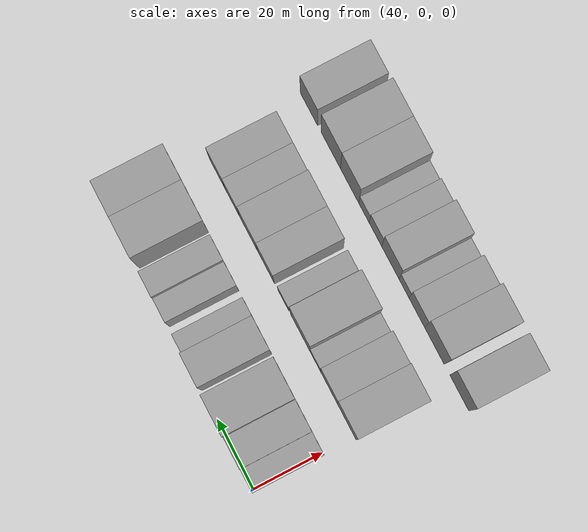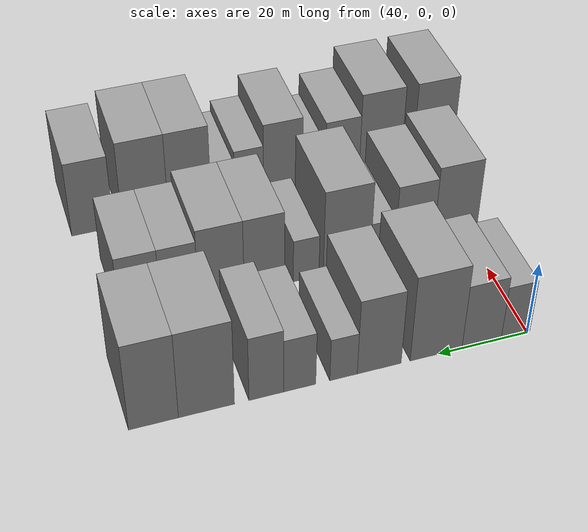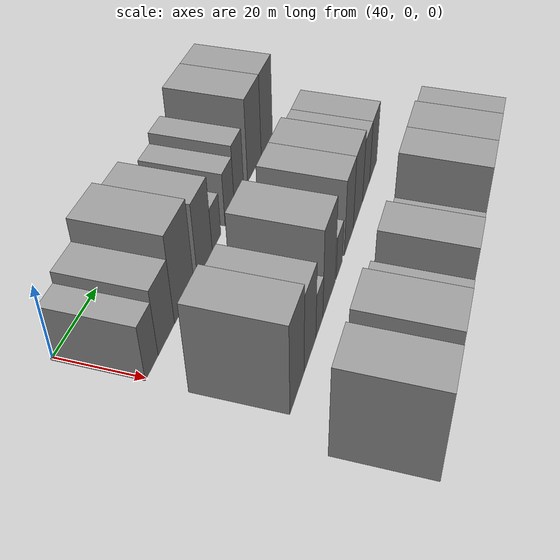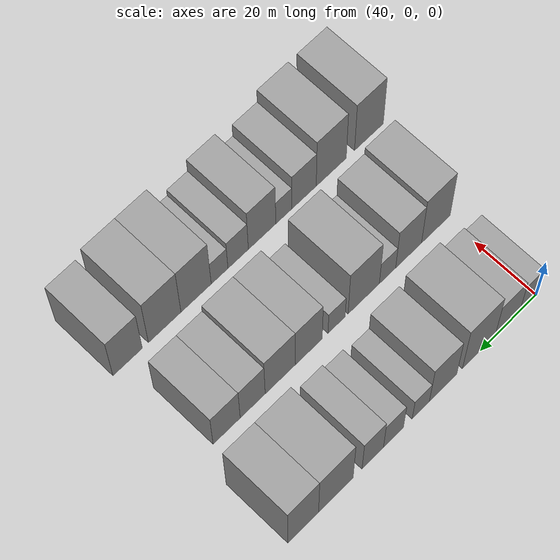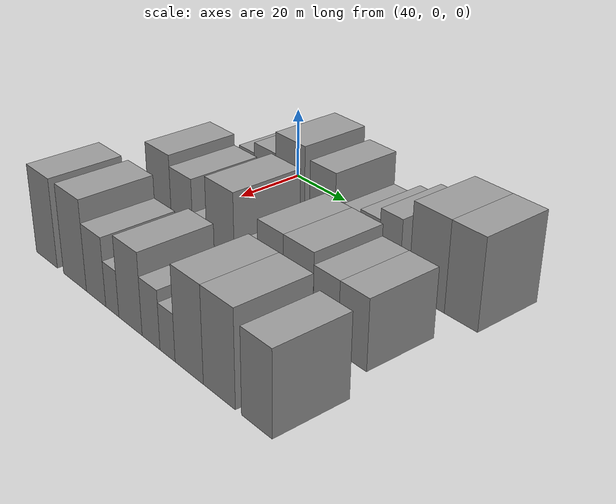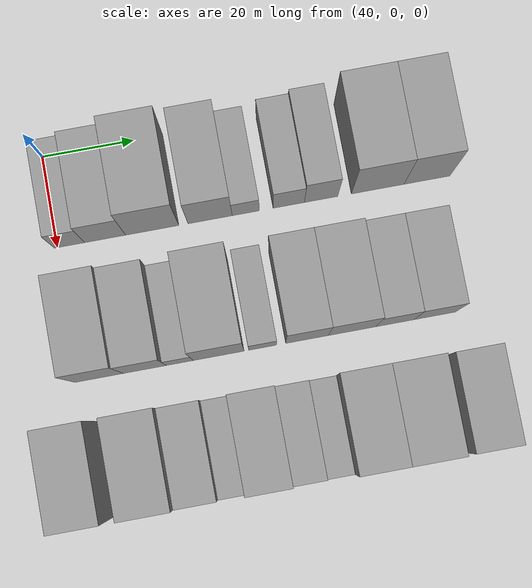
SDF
<sdf version="1.6">
 <world name="default">
  <model name="building_40">
   <static>1</static>
   <pose>50.0000 2.6433 0 0.000000 0.000000 0.000000</pose>
   <link name="link">
    <pose>0 0 7.50 0 0 0</pose>
    <collision name="collision"><geometry><box><size>20.0000 6.5380 15.0000</size></box></geometry></collision>
    <visual name="visual">
     <cast_shadows>0</cast_shadows>
     <geometry><box><size>20.0000 6.5380 15.0000</size></box></geometry>
     <material>
      <script>
       <uri>model://grey_wall/materials/scripts</uri>
       <uri>model://grey_wall/materials/textures</uri>
       <name>vrc/grey_wall</name>
      </script>
     </material>
    </visual>
   </link>
  </model>
  <model name="building_41">
   <static>1</static>
   <pose>50.0000 10.3555 0 0.000000 0.000000 0.000000</pose>
   <link name="link">
    <pose>0 0 9.00 0 0 0</pose>
    <collision name="collision"><geometry><box><size>20.0000 8.8864 18.0000</size></box></geometry></collision>
    <visual name="visual">
     <cast_shadows>0</cast_shadows>
     <geometry><box><size>20.0000 8.8864 18.0000</size></box></geometry>
     <material>
      <script>
       <uri>model://grey_wall/materials/scripts</uri>
       <uri>model://grey_wall/materials/textures</uri>
       <name>vrc/grey_wall</name>
      </script>
     </material>
    </visual>
   </link>
  </model>
  <model name="building_42">
   <static>1</static>
   <pose>50.0000 20.5644 0 0.000000 0.000000 0.000000</pose>
   <link name="link">
    <pose>0 0 12.00 0 0 0</pose>
    <collision name="collision"><geometry><box><size>20.0000 11.5315 24.0000</size></box></geometry></collision>
    <visual name="visual">
     <cast_shadows>0</cast_shadows>
     <geometry><box><size>20.0000 11.5315 24.0000</size></box></geometry>
     <material>
      <script>
       <uri>model://grey_wall/materials/scripts</uri>
       <uri>model://grey_wall/materials/textures</uri>
       <name>vrc/grey_wall</name>
      </script>
     </material>
    </visual>
   </link>
  </model>
  <model name="building_43">
   <static>1</static>
   <pose>50.0000 33.1167 0 0.000000 0.000000 0.000000</pose>
   <link name="link">
    <pose>0 0 10.50 0 0 0</pose>
    <collision name="collision"><geometry><box><size>20.0000 9.5731 21.0000</size></box></geometry></collision>
    <visual name="visual">
     <cast_shadows>0</cast_shadows>
     <geometry><box><size>20.0000 9.5731 21.0000</size></box></geometry>
     <material>
      <script>
       <uri>model://grey_wall/materials/scripts</uri>
       <uri>model://grey_wall/materials/textures</uri>
       <name>vrc/grey_wall</name>
      </script>
     </material>
    </visual>
   </link>
  </model>
  <model name="building_44">
   <static>1</static>
   <pose>50.0000 40.8518 0 0.000000 0.000000 0.000000</pose>
   <link name="link">
    <pose>0 0 6.00 0 0 0</pose>
    <collision name="collision"><geometry><box><size>20.0000 5.8971 12.0000</size></box></geometry></collision>
    <visual name="visual">
     <cast_shadows>0</cast_shadows>
     <geometry><box><size>20.0000 5.8971 12.0000</size></box></geometry>
     <material>
      <script>
       <uri>model://grey_wall/materials/scripts</uri>
       <uri>model://grey_wall/materials/textures</uri>
       <name>vrc/grey_wall</name>
      </script>
     </material>
    </visual>
   </link>
  </model>
  <model name="building_45">
   <static>1</static>
   <pose>50.0000 50.2106 0 0.000000 0.000000 0.000000</pose>
   <link name="link">
    <pose>0 0 7.50 0 0 0</pose>
    <collision name="collision"><geometry><box><size>20.0000 6.8205 15.0000</size></box></geometry></collision>
    <visual name="visual">
     <cast_shadows>0</cast_shadows>
     <geometry><box><size>20.0000 6.8205 15.0000</size></box></geometry>
     <material>
      <script>
       <uri>model://grey_wall/materials/scripts</uri>
       <uri>model://grey_wall/materials/textures</uri>
       <name>vrc/grey_wall</name>
      </script>
     </material>
    </visual>
   </link>
  </model>
  <model name="building_46">
   <static>1</static>
   <pose>50.0000 57.2424 0 0.000000 0.000000 0.000000</pose>
   <link name="link">
    <pose>0 0 9.00 0 0 0</pose>
    <collision name="collision"><geometry><box><size>20.0000 7.2431 18.0000</size></box></geometry></collision>
    <visual name="visual">
     <cast_shadows>0</cast_shadows>
     <geometry><box><size>20.0000 7.2431 18.0000</size></box></geometry>
     <material>
      <script>
       <uri>model://grey_wall/materials/scripts</uri>
       <uri>model://grey_wall/materials/textures</uri>
       <name>vrc/grey_wall</name>
      </script>
     </material>
    </visual>
   </link>
  </model>
  <model name="building_47">
   <static>1</static>
   <pose>50.0000 69.6087 0 0.000000 0.000000 0.000000</pose>
   <link name="link">
    <pose>0 0 12.00 0 0 0</pose>
    <collision name="collision"><geometry><box><size>20.0000 11.4896 24.0000</size></box></geometry></collision>
    <visual name="visual">
     <cast_shadows>0</cast_shadows>
     <geometry><box><size>20.0000 11.4896 24.0000</size></box></geometry>
     <material>
      <script>
       <uri>model://grey_wall/materials/scripts</uri>
       <uri>model://grey_wall/materials/textures</uri>
       <name>vrc/grey_wall</name>
      </script>
     </material>
    </visual>
   </link>
  </model>
  <model name="building_48">
   <static>1</static>
   <pose>50.0000 80.3825 0 0.000000 0.000000 0.000000</pose>
   <link name="link">
    <pose>0 0 12.00 0 0 0</pose>
    <collision name="collision"><geometry><box><size>20.0000 10.0580 24.0000</size></box></geometry></collision>
    <visual name="visual">
     <cast_shadows>0</cast_shadows>
     <geometry><box><size>20.0000 10.0580 24.0000</size></box></geometry>
     <material>
      <script>
       <uri>model://grey_wall/materials/scripts</uri>
       <uri>model://grey_wall/materials/textures</uri>
       <name>vrc/grey_wall</name>
      </script>
     </material>
    </visual>
   </link>
  </model>
  <model name="building_113">
   <static>1</static>
   <pose>79.0000 4.1818 0 0.000000 0.000000 0.000000</pose>
   <link name="link">
    <pose>0 0 12.00 0 0 0</pose>
    <collision name="collision"><geometry><box><size>20.0000 10.3268 24.0000</size></box></geometry></collision>
    <visual name="visual">
     <cast_shadows>0</cast_shadows>
     <geometry><box><size>20.0000 10.3268 24.0000</size></box></geometry>
     <material>
      <script>
       <uri>model://grey_wall/materials/scripts</uri>
       <uri>model://grey_wall/materials/textures</uri>
       <name>vrc/grey_wall</name>
      </script>
     </material>
    </visual>
   </link>
  </model>
  <model name="building_114">
   <static>1</static>
   <pose>79.0000 13.9380 0 0.000000 0.000000 0.000000</pose>
   <link name="link">
    <pose>0 0 10.50 0 0 0</pose>
    <collision name="collision"><geometry><box><size>20.0000 9.1856 21.0000</size></box></geometry></collision>
    <visual name="visual">
     <cast_shadows>0</cast_shadows>
     <geometry><box><size>20.0000 9.1856 21.0000</size></box></geometry>
     <material>
      <script>
       <uri>model://grey_wall/materials/scripts</uri>
       <uri>model://grey_wall/materials/textures</uri>
       <name>vrc/grey_wall</name>
      </script>
     </material>
    </visual>
   </link>
  </model>
  <model name="building_115">
   <static>1</static>
   <pose>79.0000 21.4108 0 0.000000 0.000000 0.000000</pose>
   <link name="link">
    <pose>0 0 6.00 0 0 0</pose>
    <collision name="collision"><geometry><box><size>20.0000 5.7599 12.0000</size></box></geometry></collision>
    <visual name="visual">
     <cast_shadows>0</cast_shadows>
     <geometry><box><size>20.0000 5.7599 12.0000</size></box></geometry>
     <material>
      <script>
       <uri>model://grey_wall/materials/scripts</uri>
       <uri>model://grey_wall/materials/textures</uri>
       <name>vrc/grey_wall</name>
      </script>
     </material>
    </visual>
   </link>
  </model>
  <model name="building_116">
   <static>1</static>
   <pose>79.0000 29.7503 0 0.000000 0.000000 0.000000</pose>
   <link name="link">
    <pose>0 0 12.00 0 0 0</pose>
    <collision name="collision"><geometry><box><size>20.0000 10.9190 24.0000</size></box></geometry></collision>
    <visual name="visual">
     <cast_shadows>0</cast_shadows>
     <geometry><box><size>20.0000 10.9190 24.0000</size></box></geometry>
     <material>
      <script>
       <uri>model://grey_wall/materials/scripts</uri>
       <uri>model://grey_wall/materials/textures</uri>
       <name>vrc/grey_wall</name>
      </script>
     </material>
    </visual>
   </link>
  </model>
  <model name="building_117">
   <static>1</static>
   <pose>79.0000 39.1713 0 0.000000 0.000000 0.000000</pose>
   <link name="link">
    <pose>0 0 6.00 0 0 0</pose>
    <collision name="collision"><geometry><box><size>20.0000 5.9230 12.0000</size></box></geometry></collision>
    <visual name="visual">
     <cast_shadows>0</cast_shadows>
     <geometry><box><size>20.0000 5.9230 12.0000</size></box></geometry>
     <material>
      <script>
       <uri>model://grey_wall/materials/scripts</uri>
       <uri>model://grey_wall/materials/textures</uri>
       <name>vrc/grey_wall</name>
      </script>
     </material>
    </visual>
   </link>
  </model>
  <model name="building_118">
   <static>1</static>
   <pose>79.0000 48.6956 0 0.000000 0.000000 0.000000</pose>
   <link name="link">
    <pose>0 0 10.50 0 0 0</pose>
    <collision name="collision"><geometry><box><size>20.0000 9.1257 21.0000</size></box></geometry></collision>
    <visual name="visual">
     <cast_shadows>0</cast_shadows>
     <geometry><box><size>20.0000 9.1257 21.0000</size></box></geometry>
     <material>
      <script>
       <uri>model://grey_wall/materials/scripts</uri>
       <uri>model://grey_wall/materials/textures</uri>
       <name>vrc/grey_wall</name>
      </script>
     </material>
    </visual>
   </link>
  </model>
  <model name="building_119">
   <static>1</static>
   <pose>79.0000 58.3672 0 0.000000 0.000000 0.000000</pose>
   <link name="link">
    <pose>0 0 10.50 0 0 0</pose>
    <collision name="collision"><geometry><box><size>20.0000 10.2175 21.0000</size></box></geometry></collision>
    <visual name="visual">
     <cast_shadows>0</cast_shadows>
     <geometry><box><size>20.0000 10.2175 21.0000</size></box></geometry>
     <material>
      <script>
       <uri>model://grey_wall/materials/scripts</uri>
       <uri>model://grey_wall/materials/textures</uri>
       <name>vrc/grey_wall</name>
      </script>
     </material>
    </visual>
   </link>
  </model>
  <model name="building_120">
   <static>1</static>
   <pose>79.0000 67.6399 0 0.000000 0.000000 0.000000</pose>
   <link name="link">
    <pose>0 0 9.00 0 0 0</pose>
    <collision name="collision"><geometry><box><size>20.0000 8.3278 18.0000</size></box></geometry></collision>
    <visual name="visual">
     <cast_shadows>0</cast_shadows>
     <geometry><box><size>20.0000 8.3278 18.0000</size></box></geometry>
     <material>
      <script>
       <uri>model://grey_wall/materials/scripts</uri>
       <uri>model://grey_wall/materials/textures</uri>
       <name>vrc/grey_wall</name>
      </script>
     </material>
    </visual>
   </link>
  </model>
  <model name="building_121">
   <static>1</static>
   <pose>79.0000 76.2771 0 0.000000 0.000000 0.000000</pose>
   <link name="link">
    <pose>0 0 9.00 0 0 0</pose>
    <collision name="collision"><geometry><box><size>20.0000 8.9467 18.0000</size></box></geometry></collision>
    <visual name="visual">
     <cast_shadows>0</cast_shadows>
     <geometry><box><size>20.0000 8.9467 18.0000</size></box></geometry>
     <material>
      <script>
       <uri>model://grey_wall/materials/scripts</uri>
       <uri>model://grey_wall/materials/textures</uri>
       <name>vrc/grey_wall</name>
      </script>
     </material>
    </visual>
   </link>
  </model>
  <model name="building_187">
   <static>1</static>
   <pose>108.0000 -2.6671 0 0.000000 0.000000 0.000000</pose>
   <link name="link">
    <pose>0 0 12.00 0 0 0</pose>
    <collision name="collision"><geometry><box><size>20.0000 10.3879 24.0000</size></box></geometry></collision>
    <visual name="visual">
     <cast_shadows>0</cast_shadows>
     <geometry><box><size>20.0000 10.3879 24.0000</size></box></geometry>
     <material>
      <script>
       <uri>model://grey_wall/materials/scripts</uri>
       <uri>model://grey_wall/materials/textures</uri>
       <name>vrc/grey_wall</name>
      </script>
     </material>
    </visual>
   </link>
  </model>
  <model name="building_188">
   <static>1</static>
   <pose>108.0000 10.8776 0 0.000000 0.000000 0.000000</pose>
   <link name="link">
    <pose>0 0 12.00 0 0 0</pose>
    <collision name="collision"><geometry><box><size>20.0000 10.7017 24.0000</size></box></geometry></collision>
    <visual name="visual">
     <cast_shadows>0</cast_shadows>
     <geometry><box><size>20.0000 10.7017 24.0000</size></box></geometry>
     <material>
      <script>
       <uri>model://grey_wall/materials/scripts</uri>
       <uri>model://grey_wall/materials/textures</uri>
       <name>vrc/grey_wall</name>
      </script>
     </material>
    </visual>
   </link>
  </model>
  <model name="building_189">
   <static>1</static>
   <pose>108.0000 20.5177 0 0.000000 0.000000 0.000000</pose>
   <link name="link">
    <pose>0 0 9.00 0 0 0</pose>
    <collision name="collision"><geometry><box><size>20.0000 8.5784 18.0000</size></box></geometry></collision>
    <visual name="visual">
     <cast_shadows>0</cast_shadows>
     <geometry><box><size>20.0000 8.5784 18.0000</size></box></geometry>
     <material>
      <script>
       <uri>model://grey_wall/materials/scripts</uri>
       <uri>model://grey_wall/materials/textures</uri>
       <name>vrc/grey_wall</name>
      </script>
     </material>
    </visual>
   </link>
  </model>
  <model name="building_190">
   <static>1</static>
   <pose>108.0000 27.6079 0 0.000000 0.000000 0.000000</pose>
   <link name="link">
    <pose>0 0 6.00 0 0 0</pose>
    <collision name="collision"><geometry><box><size>20.0000 5.6020 12.0000</size></box></geometry></collision>
    <visual name="visual">
     <cast_shadows>0</cast_shadows>
     <geometry><box><size>20.0000 5.6020 12.0000</size></box></geometry>
     <material>
      <script>
       <uri>model://grey_wall/materials/scripts</uri>
       <uri>model://grey_wall/materials/textures</uri>
       <name>vrc/grey_wall</name>
      </script>
     </material>
    </visual>
   </link>
  </model>
  <model name="building_191">
   <static>1</static>
   <pose>108.0000 35.1786 0 0.000000 0.000000 0.000000</pose>
   <link name="link">
    <pose>0 0 10.50 0 0 0</pose>
    <collision name="collision"><geometry><box><size>20.0000 9.5395 21.0000</size></box></geometry></collision>
    <visual name="visual">
     <cast_shadows>0</cast_shadows>
     <geometry><box><size>20.0000 9.5395 21.0000</size></box></geometry>
     <material>
      <script>
       <uri>model://grey_wall/materials/scripts</uri>
       <uri>model://grey_wall/materials/textures</uri>
       <name>vrc/grey_wall</name>
      </script>
     </material>
    </visual>
   </link>
  </model>
  <model name="building_192">
   <static>1</static>
   <pose>108.0000 43.4532 0 0.000000 0.000000 0.000000</pose>
   <link name="link">
    <pose>0 0 7.50 0 0 0</pose>
    <collision name="collision"><geometry><box><size>20.0000 7.0097 15.0000</size></box></geometry></collision>
    <visual name="visual">
     <cast_shadows>0</cast_shadows>
     <geometry><box><size>20.0000 7.0097 15.0000</size></box></geometry>
     <material>
      <script>
       <uri>model://grey_wall/materials/scripts</uri>
       <uri>model://grey_wall/materials/textures</uri>
       <name>vrc/grey_wall</name>
      </script>
     </material>
    </visual>
   </link>
  </model>
  <model name="building_193">
   <static>1</static>
   <pose>108.0000 49.8069 0 0.000000 0.000000 0.000000</pose>
   <link name="link">
    <pose>0 0 6.00 0 0 0</pose>
    <collision name="collision"><geometry><box><size>20.0000 5.6976 12.0000</size></box></geometry></collision>
    <visual name="visual">
     <cast_shadows>0</cast_shadows>
     <geometry><box><size>20.0000 5.6976 12.0000</size></box></geometry>
     <material>
      <script>
       <uri>model://grey_wall/materials/scripts</uri>
       <uri>model://grey_wall/materials/textures</uri>
       <name>vrc/grey_wall</name>
      </script>
     </material>
    </visual>
   </link>
  </model>
  <model name="building_194">
   <static>1</static>
   <pose>108.0000 57.7580 0 0.000000 0.000000 0.000000</pose>
   <link name="link">
    <pose>0 0 12.00 0 0 0</pose>
    <collision name="collision"><geometry><box><size>20.0000 10.2046 24.0000</size></box></geometry></collision>
    <visual name="visual">
     <cast_shadows>0</cast_shadows>
     <geometry><box><size>20.0000 10.2046 24.0000</size></box></geometry>
     <material>
      <script>
       <uri>model://grey_wall/materials/scripts</uri>
       <uri>model://grey_wall/materials/textures</uri>
       <name>vrc/grey_wall</name>
      </script>
     </material>
    </visual>
   </link>
  </model>
  <model name="building_195">
   <static>1</static>
   <pose>108.0000 68.2894 0 0.000000 0.000000 0.000000</pose>
   <link name="link">
    <pose>0 0 12.00 0 0 0</pose>
    <collision name="collision"><geometry><box><size>20.0000 10.8582 24.0000</size></box></geometry></collision>
    <visual name="visual">
     <cast_shadows>0</cast_shadows>
     <geometry><box><size>20.0000 10.8582 24.0000</size></box></geometry>
     <material>
      <script>
       <uri>model://grey_wall/materials/scripts</uri>
       <uri>model://grey_wall/materials/textures</uri>
       <name>vrc/grey_wall</name>
      </script>
     </material>
    </visual>
   </link>
  </model>
  <model name="building_196">
   <static>1</static>
   <pose>108.0000 80.5509 0 0.000000 0.000000 0.000000</pose>
   <link name="link">
    <pose>0 0 10.50 0 0 0</pose>
    <collision name="collision"><geometry><box><size>20.0000 9.6648 21.0000</size></box></geometry></collision>
    <visual name="visual">
     <cast_shadows>0</cast_shadows>
     <geometry><box><size>20.0000 9.6648 21.0000</size></box></geometry>
     <material>
      <script>
       <uri>model://grey_wall/materials/scripts</uri>
       <uri>model://grey_wall/materials/textures</uri>
       <name>vrc/grey_wall</name>
      </script>
     </material>
    </visual>
   </link>
  </model>
 </world>
</sdf>
